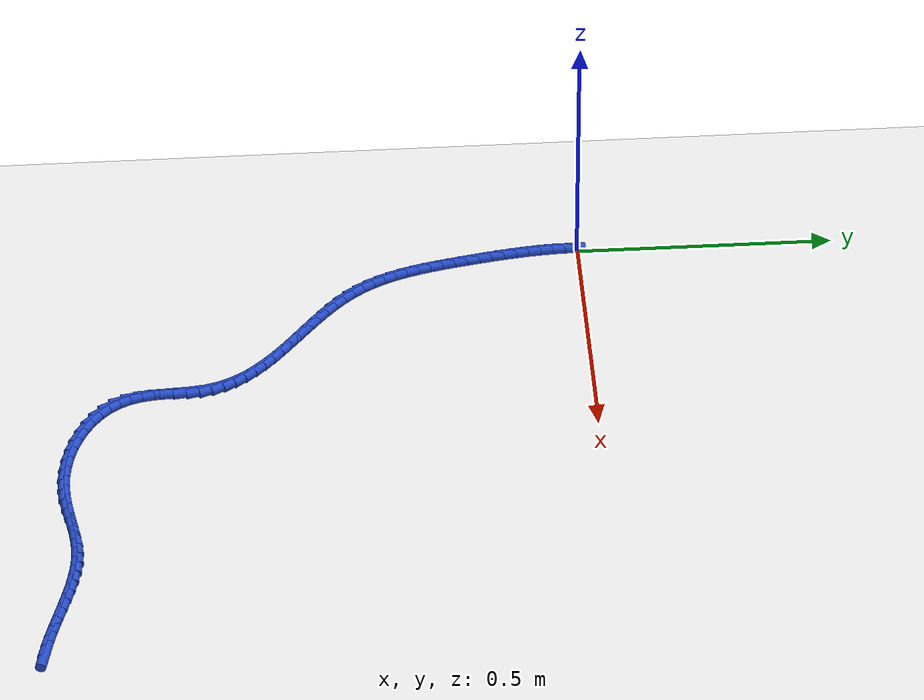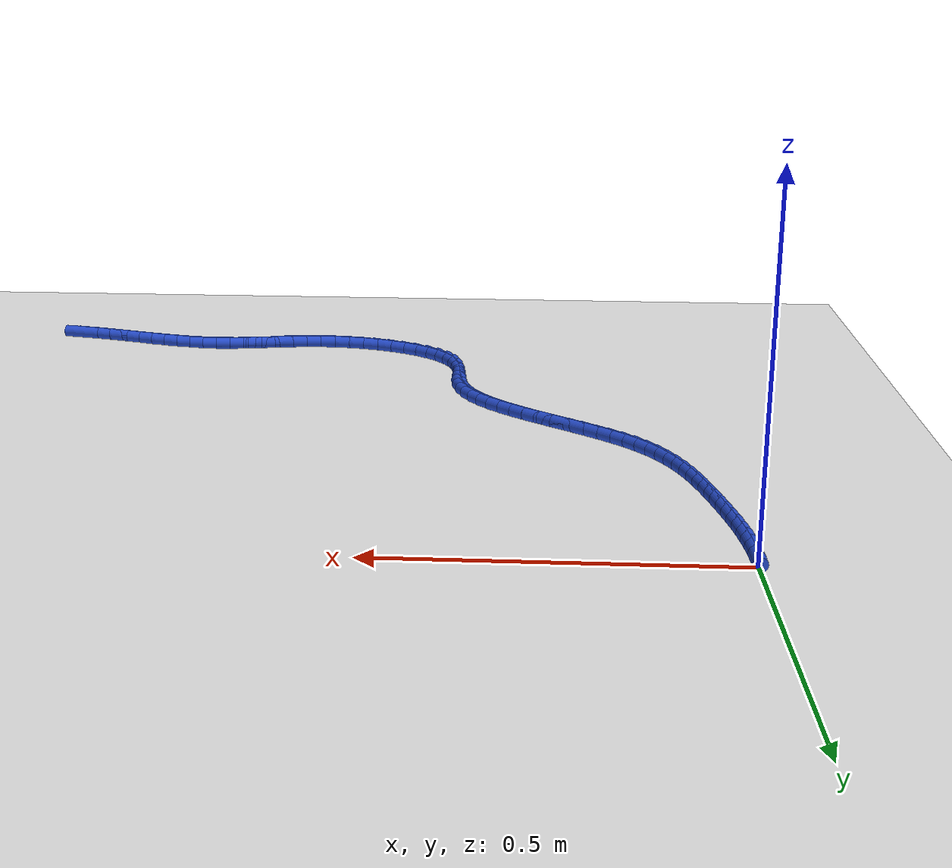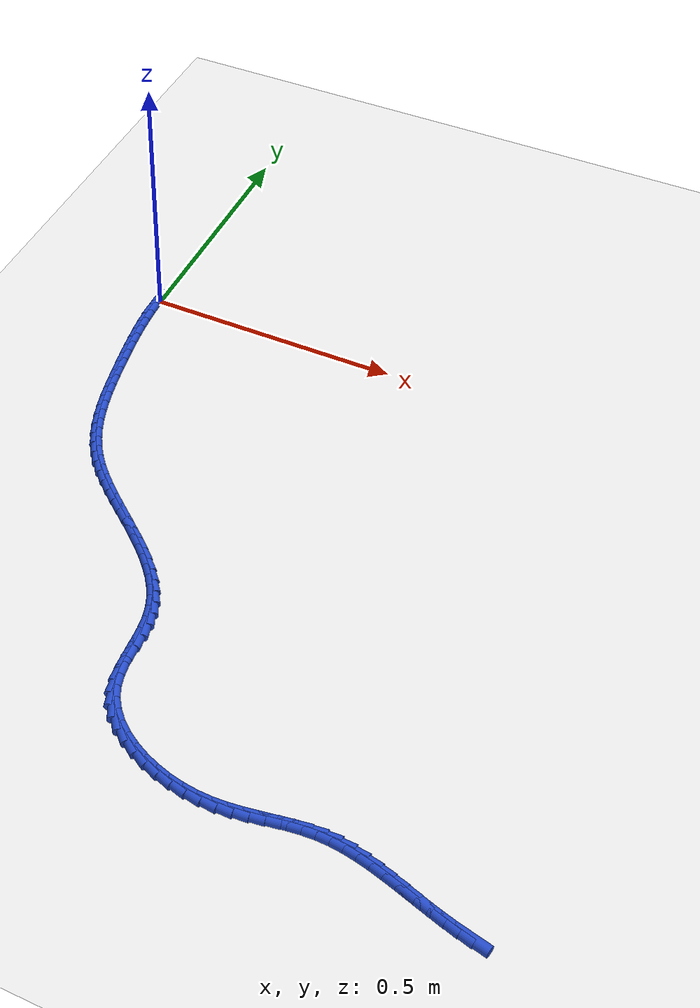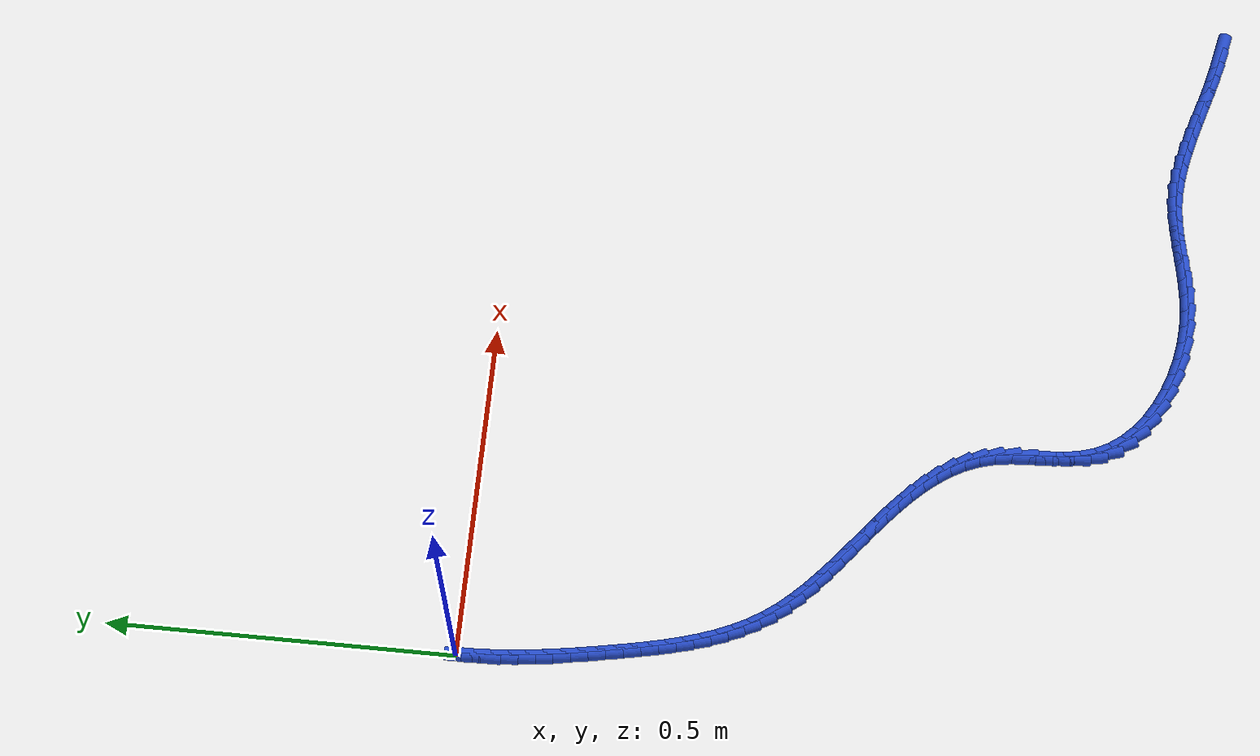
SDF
<sdf version="1.6">
 <world name="default">
  <model name="ground_plane">
   <static>1</static>
   <link name="link">
    <collision name="collision">
     <geometry><plane><normal>0 0 1</normal><size>100 100</size></plane></geometry>
     <surface><friction><ode><mu>100</mu><mu2>50</mu2></ode></friction></surface>
    </collision>
    <visual name="visual">
     <cast_shadows>0</cast_shadows>
     <geometry><plane><normal>0 0 1</normal><size>100 100</size></plane></geometry>
     <material>
      <script><uri>file://media/materials/scripts/gazebo.material</uri><name>Gazebo/WhiteGlow</name></script>
     </material>
    </visual>
   </link>
  </model>
  <model name="line">
   <link name="link_210">
    <pose>1.0530616976542395 -1.0436861329142035 0.01 0 1.57 -0.21868305829367313</pose>
    <collision name="collision">
     <geometry><cylinder><radius>0.01</radius><length>0.08</length></cylinder></geometry>
    </collision>
    <visual name="visual">
     <material>
      <script><name>Gazebo/Blue</name><uri>file://media/materials/scripts/gazebo.material</uri></script>
     </material>
     <geometry><cylinder><radius>0.01</radius><length>0.08</length></cylinder></geometry>
    </visual>
   </link>
   <link name="link_211">
    <pose>1.0292580883515543 -1.038396089441456 0.01 0 1.57 -0.25758328399055513</pose>
    <collision name="collision">
     <geometry><cylinder><radius>0.01</radius><length>0.08</length></cylinder></geometry>
    </collision>
    <visual name="visual">
     <material>
      <script><name>Gazebo/Blue</name><uri>file://media/materials/scripts/gazebo.material</uri></script>
     </material>
     <geometry><cylinder><radius>0.01</radius><length>0.08</length></cylinder></geometry>
    </visual>
   </link>
   <link name="link_212">
    <pose>1.0054168484246102 -1.0321154614720924 0.01 0 1.57 -0.2831201206626448</pose>
    <collision name="collision">
     <geometry><cylinder><radius>0.01</radius><length>0.08</length></cylinder></geometry>
    </collision>
    <visual name="visual">
     <material>
      <script><name>Gazebo/Blue</name><uri>file://media/materials/scripts/gazebo.material</uri></script>
     </material>
     <geometry><cylinder><radius>0.01</radius><length>0.08</length></cylinder></geometry>
    </visual>
   </link>
   <link name="link_213">
    <pose>0.9815514482331007 -1.0251721696708285 0.01 0 1.57 -0.29587772298280995</pose>
    <collision name="collision">
     <geometry><cylinder><radius>0.01</radius><length>0.08</length></cylinder></geometry>
    </collision>
    <visual name="visual">
     <material>
      <script><name>Gazebo/Blue</name><uri>file://media/materials/scripts/gazebo.material</uri></script>
     </material>
     <geometry><cylinder><radius>0.01</radius><length>0.08</length></cylinder></geometry>
    </visual>
   </link>
   <link name="link_214">
    <pose>0.9576753581367193 -1.017894134702379 0.01 0 1.57 -0.2961716633193825</pose>
    <collision name="collision">
     <geometry><cylinder><radius>0.01</radius><length>0.08</length></cylinder></geometry>
    </collision>
    <visual name="visual">
     <material>
      <script><name>Gazebo/Blue</name><uri>file://media/materials/scripts/gazebo.material</uri></script>
     </material>
     <geometry><cylinder><radius>0.01</radius><length>0.08</length></cylinder></geometry>
    </visual>
   </link>
   <link name="link_215">
    <pose>0.9338020484951598 -1.0106092772314597 0.01 0 1.57 -0.2840046488925078</pose>
    <collision name="collision">
     <geometry><cylinder><radius>0.01</radius><length>0.08</length></cylinder></geometry>
    </collision>
    <visual name="visual">
     <material>
      <script><name>Gazebo/Blue</name><uri>file://media/materials/scripts/gazebo.material</uri></script>
     </material>
     <geometry><cylinder><radius>0.01</radius><length>0.08</length></cylinder></geometry>
    </visual>
   </link>
   <link name="link_216">
    <pose>0.9099449896681151 -1.0036455179227852 0.01 0 1.57 -0.2590651810476994</pose>
    <collision name="collision">
     <geometry><cylinder><radius>0.01</radius><length>0.08</length></cylinder></geometry>
    </collision>
    <visual name="visual">
     <material>
      <script><name>Gazebo/Blue</name><uri>file://media/materials/scripts/gazebo.material</uri></script>
     </material>
     <geometry><cylinder><radius>0.01</radius><length>0.08</length></cylinder></geometry>
    </visual>
   </link>
   <link name="link_217">
    <pose>0.8861176520152783 -0.9973307774410712 0.01 0 1.57 -0.22076884287622872</pose>
    <collision name="collision">
     <geometry><cylinder><radius>0.01</radius><length>0.08</length></cylinder></geometry>
    </collision>
    <visual name="visual">
     <material>
      <script><name>Gazebo/Blue</name><uri>file://media/materials/scripts/gazebo.material</uri></script>
     </material>
     <geometry><cylinder><radius>0.01</radius><length>0.08</length></cylinder></geometry>
    </visual>
   </link>
   <link name="link_218">
    <pose>0.8623335058963438 -0.9919929764510326 0.01 0 1.57 -0.16836019433519916</pose>
    <collision name="collision">
     <geometry><cylinder><radius>0.01</radius><length>0.08</length></cylinder></geometry>
    </collision>
    <visual name="visual">
     <material>
      <script><name>Gazebo/Blue</name><uri>file://media/materials/scripts/gazebo.material</uri></script>
     </material>
     <geometry><cylinder><radius>0.01</radius><length>0.08</length></cylinder></geometry>
    </visual>
   </link>
   <link name="link_219">
    <pose>0.8386060216710046 -0.9879600356173844 0.01 0 1.57 -0.10110917897774617</pose>
    <collision name="collision">
     <geometry><cylinder><radius>0.01</radius><length>0.08</length></cylinder></geometry>
    </collision>
    <visual name="visual">
     <material>
      <script><name>Gazebo/Blue</name><uri>file://media/materials/scripts/gazebo.material</uri></script>
     </material>
     <geometry><cylinder><radius>0.01</radius><length>0.08</length></cylinder></geometry>
    </visual>
   </link>
   <link name="link_220">
    <pose>0.8149486696989543 -0.9855598756048424 0.01 0 1.57 -0.018678585484406603</pose>
    <collision name="collision">
     <geometry><cylinder><radius>0.01</radius><length>0.08</length></cylinder></geometry>
    </collision>
    <visual name="visual">
     <material>
      <script><name>Gazebo/Blue</name><uri>file://media/materials/scripts/gazebo.material</uri></script>
     </material>
     <geometry><cylinder><radius>0.01</radius><length>0.08</length></cylinder></geometry>
    </visual>
   </link>
   <link name="link_221">
    <pose>0.7913748019098161 -0.9851194978845579 0.01 0 1.57 0.06767314366324949</pose>
    <collision name="collision">
     <geometry><cylinder><radius>0.01</radius><length>0.08</length></cylinder></geometry>
    </collision>
    <visual name="visual">
     <material>
      <script><name>Gazebo/Blue</name><uri>file://media/materials/scripts/gazebo.material</uri></script>
     </material>
     <geometry><cylinder><radius>0.01</radius><length>0.08</length></cylinder></geometry>
    </visual>
   </link>
   <link name="link_222">
    <pose>0.7678651730818614 -0.9867129015293231 0.01 0 1.57 0.13114084671358858</pose>
    <collision name="collision">
     <geometry><cylinder><radius>0.01</radius><length>0.08</length></cylinder></geometry>
    </collision>
    <visual name="visual">
     <material>
      <script><name>Gazebo/Blue</name><uri>file://media/materials/scripts/gazebo.material</uri></script>
     </material>
     <geometry><cylinder><radius>0.01</radius><length>0.08</length></cylinder></geometry>
    </visual>
   </link>
   <link name="link_223">
    <pose>0.7443237332532547 -0.989817966544889 0.01 0 1.57 0.16769827654330347</pose>
    <collision name="collision">
     <geometry><cylinder><radius>0.01</radius><length>0.08</length></cylinder></geometry>
    </collision>
    <visual name="visual">
     <material>
      <script><name>Gazebo/Blue</name><uri>file://media/materials/scripts/gazebo.material</uri></script>
     </material>
     <geometry><cylinder><radius>0.01</radius><length>0.08</length></cylinder></geometry>
    </visual>
   </link>
   <link name="link_224">
    <pose>0.72064337769492 -0.9938267714939579 0.01 0 1.57 0.17800694090731728</pose>
    <collision name="collision">
     <geometry><cylinder><radius>0.01</radius><length>0.08</length></cylinder></geometry>
    </collision>
    <visual name="visual">
     <material>
      <script><name>Gazebo/Blue</name><uri>file://media/materials/scripts/gazebo.material</uri></script>
     </material>
     <geometry><cylinder><radius>0.01</radius><length>0.08</length></cylinder></geometry>
    </visual>
   </link>
   <link name="link_225">
    <pose>0.6967170016777807 -0.9981313949392328 0.01 0 1.57 0.16298138473354004</pose>
    <collision name="collision">
     <geometry><cylinder><radius>0.01</radius><length>0.08</length></cylinder></geometry>
    </collision>
    <visual name="visual">
     <material>
      <script><name>Gazebo/Blue</name><uri>file://media/materials/scripts/gazebo.material</uri></script>
     </material>
     <geometry><cylinder><radius>0.01</radius><length>0.08</length></cylinder></geometry>
    </visual>
   </link>
   <link name="link_226">
    <pose>0.6724375004727593 -1.0021239154434154 0.01 0 1.57 0.12356012013674914</pose>
    <collision name="collision">
     <geometry><cylinder><radius>0.01</radius><length>0.08</length></cylinder></geometry>
    </collision>
    <visual name="visual">
     <material>
      <script><name>Gazebo/Blue</name><uri>file://media/materials/scripts/gazebo.material</uri></script>
     </material>
     <geometry><cylinder><radius>0.01</radius><length>0.08</length></cylinder></geometry>
    </visual>
   </link>
   <link name="link_227">
    <pose>0.6476977693507813 -1.0051964115692091 0.01 0 1.57 0.06095676234553309</pose>
    <collision name="collision">
     <geometry><cylinder><radius>0.01</radius><length>0.08</length></cylinder></geometry>
    </collision>
    <visual name="visual">
     <material>
      <script><name>Gazebo/Blue</name><uri>file://media/materials/scripts/gazebo.material</uri></script>
     </material>
     <geometry><cylinder><radius>0.01</radius><length>0.08</length></cylinder></geometry>
    </visual>
   </link>
   <link name="link_228">
    <pose>0.622390703582769 -1.006740961879316 0.01 0 1.57 -0.021840164656396426</pose>
    <collision name="collision">
     <geometry><cylinder><radius>0.01</radius><length>0.08</length></cylinder></geometry>
    </collision>
    <visual name="visual">
     <material>
      <script><name>Gazebo/Blue</name><uri>file://media/materials/scripts/gazebo.material</uri></script>
     </material>
     <geometry><cylinder><radius>0.01</radius><length>0.08</length></cylinder></geometry>
    </visual>
   </link>
   <link name="link_229">
    <pose>0.5964293012979454 -1.006173870409656 0.01 0 1.57 -0.10945570582149829</pose>
    <collision name="collision">
     <geometry><cylinder><radius>0.01</radius><length>0.08</length></cylinder></geometry>
    </collision>
    <visual name="visual">
     <material>
      <script><name>Gazebo/Blue</name><uri>file://media/materials/scripts/gazebo.material</uri></script>
     </material>
     <geometry><cylinder><radius>0.01</radius><length>0.08</length></cylinder></geometry>
    </visual>
   </link>
   <link name="link_230">
    <pose>0.5700259937936404 -1.0032722809377612 0.01 0 1.57 -0.19380266781285896</pose>
    <collision name="collision">
     <geometry><cylinder><radius>0.01</radius><length>0.08</length></cylinder></geometry>
    </collision>
    <visual name="visual">
     <material>
      <script><name>Gazebo/Blue</name><uri>file://media/materials/scripts/gazebo.material</uri></script>
     </material>
     <geometry><cylinder><radius>0.01</radius><length>0.08</length></cylinder></geometry>
    </visual>
   </link>
   <link name="link_231">
    <pose>0.5436230203956164 -0.9980902733939765 0.01 0 1.57 -0.277789869417138</pose>
    <collision name="collision">
     <geometry><cylinder><radius>0.01</radius><length>0.08</length></cylinder></geometry>
    </collision>
    <visual name="visual">
     <material>
      <script><name>Gazebo/Blue</name><uri>file://media/materials/scripts/gazebo.material</uri></script>
     </material>
     <geometry><cylinder><radius>0.01</radius><length>0.08</length></cylinder></geometry>
    </visual>
   </link>
   <link name="link_232">
    <pose>0.5176684918155101 -0.9906890031751867 0.01 0 1.57 -0.3644487533487689</pose>
    <collision name="collision">
     <geometry><cylinder><radius>0.01</radius><length>0.08</length></cylinder></geometry>
    </collision>
    <visual name="visual">
     <material>
      <script><name>Gazebo/Blue</name><uri>file://media/materials/scripts/gazebo.material</uri></script>
     </material>
     <geometry><cylinder><radius>0.01</radius><length>0.08</length></cylinder></geometry>
    </visual>
   </link>
   <link name="link_233">
    <pose>0.49261051876495865 -0.9811296256782766 0.01 0 1.57 -0.45686660094921444</pose>
    <collision name="collision">
     <geometry><cylinder><radius>0.01</radius><length>0.08</length></cylinder></geometry>
    </collision>
    <visual name="visual">
     <material>
      <script><name>Gazebo/Blue</name><uri>file://media/materials/scripts/gazebo.material</uri></script>
     </material>
     <geometry><cylinder><radius>0.01</radius><length>0.08</length></cylinder></geometry>
    </visual>
   </link>
   <link name="link_234">
    <pose>0.4688972119555983 -0.9694732963001303 0.01 0 1.57 -0.5583300959584045</pose>
    <collision name="collision">
     <geometry><cylinder><radius>0.01</radius><length>0.08</length></cylinder></geometry>
    </collision>
    <visual name="visual">
     <material>
      <script><name>Gazebo/Blue</name><uri>file://media/materials/scripts/gazebo.material</uri></script>
     </material>
     <geometry><cylinder><radius>0.01</radius><length>0.08</length></cylinder></geometry>
    </visual>
   </link>
   <link name="link_235">
    <pose>0.44697668209906755 -0.9557811704376336 0.01 0 1.57 -0.6723522629894625</pose>
    <collision name="collision">
     <geometry><cylinder><radius>0.01</radius><length>0.08</length></cylinder></geometry>
    </collision>
    <visual name="visual">
     <material>
      <script><name>Gazebo/Blue</name><uri>file://media/materials/scripts/gazebo.material</uri></script>
     </material>
     <geometry><cylinder><radius>0.01</radius><length>0.08</length></cylinder></geometry>
    </visual>
   </link>
   <link name="link_236">
    <pose>0.4272970399070023 -0.9401144034876703 0.01 0 1.57 -0.8024515732728478</pose>
    <collision name="collision">
     <geometry><cylinder><radius>0.01</radius><length>0.08</length></cylinder></geometry>
    </collision>
    <visual name="visual">
     <material>
      <script><name>Gazebo/Blue</name><uri>file://media/materials/scripts/gazebo.material</uri></script>
     </material>
     <geometry><cylinder><radius>0.01</radius><length>0.08</length></cylinder></geometry>
    </visual>
   </link>
   <link name="link_237">
    <pose>0.41030639609103997 -0.9225341508471256 0.01 0 1.57 -0.9514634283065532</pose>
    <collision name="collision">
     <geometry><cylinder><radius>0.01</radius><length>0.08</length></cylinder></geometry>
    </collision>
    <visual name="visual">
     <material>
      <script><name>Gazebo/Blue</name><uri>file://media/materials/scripts/gazebo.material</uri></script>
     </material>
     <geometry><cylinder><radius>0.01</radius><length>0.08</length></cylinder></geometry>
    </visual>
   </link>
   <link name="link_238">
    <pose>0.3964528613628174 -0.9031015679128844 0.01 0 1.57 -1.1201813153005158</pose>
    <collision name="collision">
     <geometry><cylinder><radius>0.01</radius><length>0.08</length></cylinder></geometry>
    </collision>
    <visual name="visual">
     <material>
      <script><name>Gazebo/Blue</name><uri>file://media/materials/scripts/gazebo.material</uri></script>
     </material>
     <geometry><cylinder><radius>0.01</radius><length>0.08</length></cylinder></geometry>
    </visual>
   </link>
   <link name="link_239">
    <pose>0.38618451807503823 -0.8818778180744037 0.01 0 1.57 -1.2925130036719752</pose>
    <collision name="collision">
     <geometry><cylinder><radius>0.01</radius><length>0.08</length></cylinder></geometry>
    </collision>
    <visual name="visual">
     <material>
      <script><name>Gazebo/Blue</name><uri>file://media/materials/scripts/gazebo.material</uri></script>
     </material>
     <geometry><cylinder><radius>0.01</radius><length>0.08</length></cylinder></geometry>
    </visual>
   </link>
   <link name="link_240">
    <pose>0.3796507588016681 -0.8590082463016806 0.01 0 1.57 -1.4189190505541875</pose>
    <collision name="collision">
     <geometry><cylinder><radius>0.01</radius><length>0.08</length></cylinder></geometry>
    </collision>
    <visual name="visual">
     <material>
      <script><name>Gazebo/Blue</name><uri>file://media/materials/scripts/gazebo.material</uri></script>
     </material>
     <geometry><cylinder><radius>0.01</radius><length>0.08</length></cylinder></geometry>
    </visual>
   </link>
   <link name="link_241">
    <pose>0.3759654477916365 -0.8349300468923395 0.01 0 1.57 -1.4923959333021555</pose>
    <collision name="collision">
     <geometry><cylinder><radius>0.01</radius><length>0.08</length></cylinder></geometry>
    </collision>
    <visual name="visual">
     <material>
      <script><name>Gazebo/Blue</name><uri>file://media/materials/scripts/gazebo.material</uri></script>
     </material>
     <geometry><cylinder><radius>0.01</radius><length>0.08</length></cylinder></geometry>
    </visual>
   </link>
   <link name="link_242">
    <pose>0.374018190718262 -0.8101436183200043 0.01 0 1.57 -1.5180492777491303</pose>
    <collision name="collision">
     <geometry><cylinder><radius>0.01</radius><length>0.08</length></cylinder></geometry>
    </collision>
    <visual name="visual">
     <material>
      <script><name>Gazebo/Blue</name><uri>file://media/materials/scripts/gazebo.material</uri></script>
     </material>
     <geometry><cylinder><radius>0.01</radius><length>0.08</length></cylinder></geometry>
    </visual>
   </link>
   <link name="link_243">
    <pose>0.37269859325486293 -0.7851493590582971 0.01 0 1.57 -1.4979614773735992</pose>
    <collision name="collision">
     <geometry><cylinder><radius>0.01</radius><length>0.08</length></cylinder></geometry>
    </collision>
    <visual name="visual">
     <material>
      <script><name>Gazebo/Blue</name><uri>file://media/materials/scripts/gazebo.material</uri></script>
     </material>
     <geometry><cylinder><radius>0.01</radius><length>0.08</length></cylinder></geometry>
    </visual>
   </link>
   <link name="link_244">
    <pose>0.3708962610747578 -0.7604476675808433 0.01 0 1.57 -1.4297220613223596</pose>
    <collision name="collision">
     <geometry><cylinder><radius>0.01</radius><length>0.08</length></cylinder></geometry>
    </collision>
    <visual name="visual">
     <material>
      <script><name>Gazebo/Blue</name><uri>file://media/materials/scripts/gazebo.material</uri></script>
     </material>
     <geometry><cylinder><radius>0.01</radius><length>0.08</length></cylinder></geometry>
    </visual>
   </link>
   <link name="link_245">
    <pose>0.36750079985126505 -0.7365389423612657 0.01 0 1.57 -1.3121722082422036</pose>
    <collision name="collision">
     <geometry><cylinder><radius>0.01</radius><length>0.08</length></cylinder></geometry>
    </collision>
    <visual name="visual">
     <material>
      <script><name>Gazebo/Blue</name><uri>file://media/materials/scripts/gazebo.material</uri></script>
     </material>
     <geometry><cylinder><radius>0.01</radius><length>0.08</length></cylinder></geometry>
    </visual>
   </link>
   <link name="link_246">
    <pose>0.36150528992391756 -0.7138757920066385 0.01 0 1.57 -1.1826823404874056</pose>
    <collision name="collision">
     <geometry><cylinder><radius>0.01</radius><length>0.08</length></cylinder></geometry>
    </collision>
    <visual name="visual">
     <material>
      <script><name>Gazebo/Blue</name><uri>file://media/materials/scripts/gazebo.material</uri></script>
     </material>
     <geometry><cylinder><radius>0.01</radius><length>0.08</length></cylinder></geometry>
    </visual>
   </link>
   <link name="link_247">
    <pose>0.35276997701227825 -0.6925103240226266 0.01 0 1.57 -1.0655399228741602</pose>
    <collision name="collision">
     <geometry><cylinder><radius>0.01</radius><length>0.08</length></cylinder></geometry>
    </collision>
    <visual name="visual">
     <material>
      <script><name>Gazebo/Blue</name><uri>file://media/materials/scripts/gazebo.material</uri></script>
     </material>
     <geometry><cylinder><radius>0.01</radius><length>0.08</length></cylinder></geometry>
    </visual>
   </link>
   <link name="link_248">
    <pose>0.341587813178342 -0.6722948001060987 0.01 0 1.57 -0.9641853253039668</pose>
    <collision name="collision">
     <geometry><cylinder><radius>0.01</radius><length>0.08</length></cylinder></geometry>
    </collision>
    <visual name="visual">
     <material>
      <script><name>Gazebo/Blue</name><uri>file://media/materials/scripts/gazebo.material</uri></script>
     </material>
     <geometry><cylinder><radius>0.01</radius><length>0.08</length></cylinder></geometry>
    </visual>
   </link>
   <link name="link_249">
    <pose>0.3282549348094591 -0.6530800112704278 0.01 0 1.57 -0.8797738420049668</pose>
    <collision name="collision">
     <geometry><cylinder><radius>0.01</radius><length>0.08</length></cylinder></geometry>
    </collision>
    <visual name="visual">
     <material>
      <script><name>Gazebo/Blue</name><uri>file://media/materials/scripts/gazebo.material</uri></script>
     </material>
     <geometry><cylinder><radius>0.01</radius><length>0.08</length></cylinder></geometry>
    </visual>
   </link>
   <link name="link_250">
    <pose>0.3130674782929798 -0.6347167485289872 0.01 0 1.57 -0.8119868187360559</pose>
    <collision name="collision">
     <geometry><cylinder><radius>0.01</radius><length>0.08</length></cylinder></geometry>
    </collision>
    <visual name="visual">
     <material>
      <script><name>Gazebo/Blue</name><uri>file://media/materials/scripts/gazebo.material</uri></script>
     </material>
     <geometry><cylinder><radius>0.01</radius><length>0.08</length></cylinder></geometry>
    </visual>
   </link>
   <link name="link_251">
    <pose>0.2963215800162546 -0.6170558028951506 0.01 0 1.57 -0.7597640404824465</pose>
    <collision name="collision">
     <geometry><cylinder><radius>0.01</radius><length>0.08</length></cylinder></geometry>
    </collision>
    <visual name="visual">
     <material>
      <script><name>Gazebo/Blue</name><uri>file://media/materials/scripts/gazebo.material</uri></script>
     </material>
     <geometry><cylinder><radius>0.01</radius><length>0.08</length></cylinder></geometry>
    </visual>
   </link>
   <link name="link_252">
    <pose>0.278313376366633 -0.5999479653822907 0.01 0 1.57 -0.721847595731066</pose>
    <collision name="collision">
     <geometry><cylinder><radius>0.01</radius><length>0.08</length></cylinder></geometry>
    </collision>
    <visual name="visual">
     <material>
      <script><name>Gazebo/Blue</name><uri>file://media/materials/scripts/gazebo.material</uri></script>
     </material>
     <geometry><cylinder><radius>0.01</radius><length>0.08</length></cylinder></geometry>
    </visual>
   </link>
   <link name="link_253">
    <pose>0.25933900373146657 -0.5832440270037819 0.01 0 1.57 -0.6971042549645593</pose>
    <collision name="collision">
     <geometry><cylinder><radius>0.01</radius><length>0.08</length></cylinder></geometry>
    </collision>
    <visual name="visual">
     <material>
      <script><name>Gazebo/Blue</name><uri>file://media/materials/scripts/gazebo.material</uri></script>
     </material>
     <geometry><cylinder><radius>0.01</radius><length>0.08</length></cylinder></geometry>
    </visual>
   </link>
   <link name="link_254">
    <pose>0.2396945984981051 -0.566794778772997 0.01 0 1.57 -0.6846860040164214</pose>
    <collision name="collision">
     <geometry><cylinder><radius>0.01</radius><length>0.08</length></cylinder></geometry>
    </collision>
    <visual name="visual">
     <material>
      <script><name>Gazebo/Blue</name><uri>file://media/materials/scripts/gazebo.material</uri></script>
     </material>
     <geometry><cylinder><radius>0.01</radius><length>0.08</length></cylinder></geometry>
    </visual>
   </link>
   <link name="link_255">
    <pose>0.2196762970538988 -0.5504510117033095 0.01 0 1.57 -0.6840957661781153</pose>
    <collision name="collision">
     <geometry><cylinder><radius>0.01</radius><length>0.08</length></cylinder></geometry>
    </collision>
    <visual name="visual">
     <material>
      <script><name>Gazebo/Blue</name><uri>file://media/materials/scripts/gazebo.material</uri></script>
     </material>
     <geometry><cylinder><radius>0.01</radius><length>0.08</length></cylinder></geometry>
    </visual>
   </link>
   <link name="link_256">
    <pose>0.19958023578619813 -0.5340635168080926 0.01 0 1.57 -0.6952040600692756</pose>
    <collision name="collision">
     <geometry><cylinder><radius>0.01</radius><length>0.08</length></cylinder></geometry>
    </collision>
    <visual name="visual">
     <material>
      <script><name>Gazebo/Blue</name><uri>file://media/materials/scripts/gazebo.material</uri></script>
     </material>
     <geometry><cylinder><radius>0.01</radius><length>0.08</length></cylinder></geometry>
    </visual>
   </link>
   <link name="link_257">
    <pose>0.1797025510823532 -0.5174830851007197 0.01 0 1.57 -0.7182389102855323</pose>
    <collision name="collision">
     <geometry><cylinder><radius>0.01</radius><length>0.08</length></cylinder></geometry>
    </collision>
    <visual name="visual">
     <material>
      <script><name>Gazebo/Blue</name><uri>file://media/materials/scripts/gazebo.material</uri></script>
     </material>
     <geometry><cylinder><radius>0.01</radius><length>0.08</length></cylinder></geometry>
    </visual>
   </link>
   <link name="link_258">
    <pose>0.16033937932971454 -0.5005605075945643 0.01 0 1.57 -0.7537517303986758</pose>
    <collision name="collision">
     <geometry><cylinder><radius>0.01</radius><length>0.08</length></cylinder></geometry>
    </collision>
    <visual name="visual">
     <material>
      <script><name>Gazebo/Blue</name><uri>file://media/materials/scripts/gazebo.material</uri></script>
     </material>
     <geometry><cylinder><radius>0.01</radius><length>0.08</length></cylinder></geometry>
    </visual>
   </link>
   <link name="link_259">
    <pose>0.1417868569156323 -0.48314657530299954 0.01 0 1.57 -0.8025445218615843</pose>
    <collision name="collision">
     <geometry><cylinder><radius>0.01</radius><length>0.08</length></cylinder></geometry>
    </collision>
    <visual name="visual">
     <material>
      <script><name>Gazebo/Blue</name><uri>file://media/materials/scripts/gazebo.material</uri></script>
     </material>
     <geometry><cylinder><radius>0.01</radius><length>0.08</length></cylinder></geometry>
    </visual>
   </link>
   <link name="link_260">
    <pose>0.12434112022745693 -0.4650920792393991 0.01 0 1.57 -0.8655268451194157</pose>
    <collision name="collision">
     <geometry><cylinder><radius>0.01</radius><length>0.08</length></cylinder></geometry>
    </collision>
    <visual name="visual">
     <material>
      <script><name>Gazebo/Blue</name><uri>file://media/materials/scripts/gazebo.material</uri></script>
     </material>
     <geometry><cylinder><radius>0.01</radius><length>0.08</length></cylinder></geometry>
    </visual>
   </link>
   <link name="link_261">
    <pose>0.10829830565253815 -0.44624781041713557 0.01 0 1.57 -0.943271297819133</pose>
    <collision name="collision">
     <geometry><cylinder><radius>0.01</radius><length>0.08</length></cylinder></geometry>
    </collision>
    <visual name="visual">
     <material>
      <script><name>Gazebo/Blue</name><uri>file://media/materials/scripts/gazebo.material</uri></script>
     </material>
     <geometry><cylinder><radius>0.01</radius><length>0.08</length></cylinder></geometry>
    </visual>
   </link>
   <link name="link_262">
    <pose>0.09395051956535087 -0.4264667879775765 0.01 0 1.57 -1.0270413227778903</pose>
    <collision name="collision">
     <geometry><cylinder><radius>0.01</radius><length>0.08</length></cylinder></geometry>
    </collision>
    <visual name="visual">
     <material>
      <script><name>Gazebo/Blue</name><uri>file://media/materials/scripts/gazebo.material</uri></script>
     </material>
     <geometry><cylinder><radius>0.01</radius><length>0.08</length></cylinder></geometry>
    </visual>
   </link>
   <link name="link_263">
    <pose>0.0814002165912097 -0.40570688640230385 0.01 0 1.57 -1.1034143802392629</pose>
    <collision name="collision">
     <geometry><cylinder><radius>0.01</radius><length>0.08</length></cylinder></geometry>
    </collision>
    <visual name="visual">
     <material>
      <script><name>Gazebo/Blue</name><uri>file://media/materials/scripts/gazebo.material</uri></script>
     </material>
     <geometry><cylinder><radius>0.01</radius><length>0.08</length></cylinder></geometry>
    </visual>
   </link>
   <link name="link_264">
    <pose>0.07048249969247562 -0.3840737945205182 0.01 0 1.57 -1.1706423131839447</pose>
    <collision name="collision">
     <geometry><cylinder><radius>0.01</radius><length>0.08</length></cylinder></geometry>
    </collision>
    <visual name="visual">
     <material>
      <script><name>Gazebo/Blue</name><uri>file://media/materials/scripts/gazebo.material</uri></script>
     </material>
     <geometry><cylinder><radius>0.01</radius><length>0.08</length></cylinder></geometry>
    </visual>
   </link>
   <link name="link_265">
    <pose>0.06101232517511456 -0.3616843399171647 0.01 0 1.57 -1.228425820993773</pose>
    <collision name="collision">
     <geometry><cylinder><radius>0.01</radius><length>0.08</length></cylinder></geometry>
    </collision>
    <visual name="visual">
     <material>
      <script><name>Gazebo/Blue</name><uri>file://media/materials/scripts/gazebo.material</uri></script>
     </material>
     <geometry><cylinder><radius>0.01</radius><length>0.08</length></cylinder></geometry>
    </visual>
   </link>
   <link name="link_266">
    <pose>0.052804649345092436 -0.3386553501771889 0.01 0 1.57 -1.2768206693702042</pose>
    <collision name="collision">
     <geometry><cylinder><radius>0.01</radius><length>0.08</length></cylinder></geometry>
    </collision>
    <visual name="visual">
     <material>
      <script><name>Gazebo/Blue</name><uri>file://media/materials/scripts/gazebo.material</uri></script>
     </material>
     <geometry><cylinder><radius>0.01</radius><length>0.08</length></cylinder></geometry>
    </visual>
   </link>
   <link name="link_267">
    <pose>0.04567442850837518 -0.31510365288553593 0.01 0 1.57 -1.316082699258755</pose>
    <collision name="collision">
     <geometry><cylinder><radius>0.01</radius><length>0.08</length></cylinder></geometry>
    </collision>
    <visual name="visual">
     <material>
      <script><name>Gazebo/Blue</name><uri>file://media/materials/scripts/gazebo.material</uri></script>
     </material>
     <geometry><cylinder><radius>0.01</radius><length>0.08</length></cylinder></geometry>
    </visual>
   </link>
   <link name="link_268">
    <pose>0.03943661897092871 -0.2911460756271514 0.01 0 1.57 -1.3465416267596166</pose>
    <collision name="collision">
     <geometry><cylinder><radius>0.01</radius><length>0.08</length></cylinder></geometry>
    </collision>
    <visual name="visual">
     <material>
      <script><name>Gazebo/Blue</name><uri>file://media/materials/scripts/gazebo.material</uri></script>
     </material>
     <geometry><cylinder><radius>0.01</radius><length>0.08</length></cylinder></geometry>
    </visual>
   </link>
   <link name="link_269">
    <pose>0.033906177038718954 -0.26689944598698057 0.01 0 1.57 -1.3685091932448723</pose>
    <collision name="collision">
     <geometry><cylinder><radius>0.01</radius><length>0.08</length></cylinder></geometry>
    </collision>
    <visual name="visual">
     <material>
      <script><name>Gazebo/Blue</name><uri>file://media/materials/scripts/gazebo.material</uri></script>
     </material>
     <geometry><cylinder><radius>0.01</radius><length>0.08</length></cylinder></geometry>
    </visual>
   </link>
   <link name="link_270">
    <pose>0.028898059017711687 -0.2424805915499682 0.01 0 1.57 -1.3822284932153415</pose>
    <collision name="collision">
     <geometry><cylinder><radius>0.01</radius><length>0.08</length></cylinder></geometry>
    </collision>
    <visual name="visual">
     <material>
      <script><name>Gazebo/Blue</name><uri>file://media/materials/scripts/gazebo.material</uri></script>
     </material>
     <geometry><cylinder><radius>0.01</radius><length>0.08</length></cylinder></geometry>
    </visual>
   </link>
   <link name="link_271">
    <pose>0.024227490101620678 -0.21800622216456902 0.01 0 1.57 -1.3908085491675837</pose>
    <collision name="collision">
     <geometry><cylinder><radius>0.01</radius><length>0.08</length></cylinder></geometry>
    </collision>
    <visual name="visual">
     <material>
      <script><name>Gazebo/Blue</name><uri>file://media/materials/scripts/gazebo.material</uri></script>
     </material>
     <geometry><cylinder><radius>0.01</radius><length>0.08</length></cylinder></geometry>
    </visual>
   </link>
   <link name="link_272">
    <pose>0.019779762118735153 -0.19356236796308873 0.01 0 1.57 -1.4012707652700083</pose>
    <collision name="collision">
     <geometry><cylinder><radius>0.01</radius><length>0.08</length></cylinder></geometry>
    </collision>
    <visual name="visual">
     <material>
      <script><name>Gazebo/Blue</name><uri>file://media/materials/scripts/gazebo.material</uri></script>
     </material>
     <geometry><cylinder><radius>0.01</radius><length>0.08</length></cylinder></geometry>
    </visual>
   </link>
   <link name="link_273">
    <pose>0.015603456207525858 -0.16916356042920488 0.01 0 1.57 -1.414657426782064</pose>
    <collision name="collision">
     <geometry><cylinder><radius>0.01</radius><length>0.08</length></cylinder></geometry>
    </collision>
    <visual name="visual">
     <material>
      <script><name>Gazebo/Blue</name><uri>file://media/materials/scripts/gazebo.material</uri></script>
     </material>
     <geometry><cylinder><radius>0.01</radius><length>0.08</length></cylinder></geometry>
    </visual>
   </link>
   <link name="link_274">
    <pose>0.011770368405659516 -0.14481416605833758 0.01 0 1.57 -1.4310267962716594</pose>
    <collision name="collision">
     <geometry><cylinder><radius>0.01</radius><length>0.08</length></cylinder></geometry>
    </collision>
    <visual name="visual">
     <material>
      <script><name>Gazebo/Blue</name><uri>file://media/materials/scripts/gazebo.material</uri></script>
     </material>
     <geometry><cylinder><radius>0.01</radius><length>0.08</length></cylinder></geometry>
    </visual>
   </link>
   <link name="link_275">
    <pose>0.008352294750802854 -0.12051855134590671 0.01 0 1.57 -1.450441497617238</pose>
    <collision name="collision">
     <geometry><cylinder><radius>0.01</radius><length>0.08</length></cylinder></geometry>
    </collision>
    <visual name="visual">
     <material>
      <script><name>Gazebo/Blue</name><uri>file://media/materials/scripts/gazebo.material</uri></script>
     </material>
     <geometry><cylinder><radius>0.01</radius><length>0.08</length></cylinder></geometry>
    </visual>
   </link>
   <link name="link_276">
    <pose>0.005421031280622589 -0.09628108278733237 0.01 0 1.57 -1.4729643892633018</pose>
    <collision name="collision">
     <geometry><cylinder><radius>0.01</radius><length>0.08</length></cylinder></geometry>
    </collision>
    <visual name="visual">
     <material>
      <script><name>Gazebo/Blue</name><uri>file://media/materials/scripts/gazebo.material</uri></script>
     </material>
     <geometry><cylinder><radius>0.01</radius><length>0.08</length></cylinder></geometry>
    </visual>
   </link>
   <link name="link_277">
    <pose>0.0030483740327854475 -0.07210612687803457 0.01 0 1.57 -1.4986532288619945</pose>
    <collision name="collision">
     <geometry><cylinder><radius>0.01</radius><length>0.08</length></cylinder></geometry>
    </collision>
    <visual name="visual">
     <material>
      <script><name>Gazebo/Blue</name><uri>file://media/materials/scripts/gazebo.material</uri></script>
     </material>
     <geometry><cylinder><radius>0.01</radius><length>0.08</length></cylinder></geometry>
    </visual>
   </link>
   <link name="link_278">
    <pose>0.0013061190449581493 -0.047998050113433305 0.01 0 1.57 -1.527554006822815</pose>
    <collision name="collision">
     <geometry><cylinder><radius>0.01</radius><length>0.08</length></cylinder></geometry>
    </collision>
    <visual name="visual">
     <material>
      <script><name>Gazebo/Blue</name><uri>file://media/materials/scripts/gazebo.material</uri></script>
     </material>
     <geometry><cylinder><radius>0.01</radius><length>0.08</length></cylinder></geometry>
    </visual>
   </link>
   <link name="link_279">
    <pose>0.0002660623548073988 -0.02396121898894784 0.01 0 1.57 -1.5596929091879075</pose>
    <collision name="collision">
     <geometry><cylinder><radius>0.01</radius><length>0.08</length></cylinder></geometry>
    </collision>
    <visual name="visual">
     <material>
      <script><name>Gazebo/Blue</name><uri>file://media/materials/scripts/gazebo.material</uri></script>
     </material>
     <geometry><cylinder><radius>0.01</radius><length>0.08</length></cylinder></geometry>
    </visual>
   </link>
  </model>
 </world>
</sdf>
